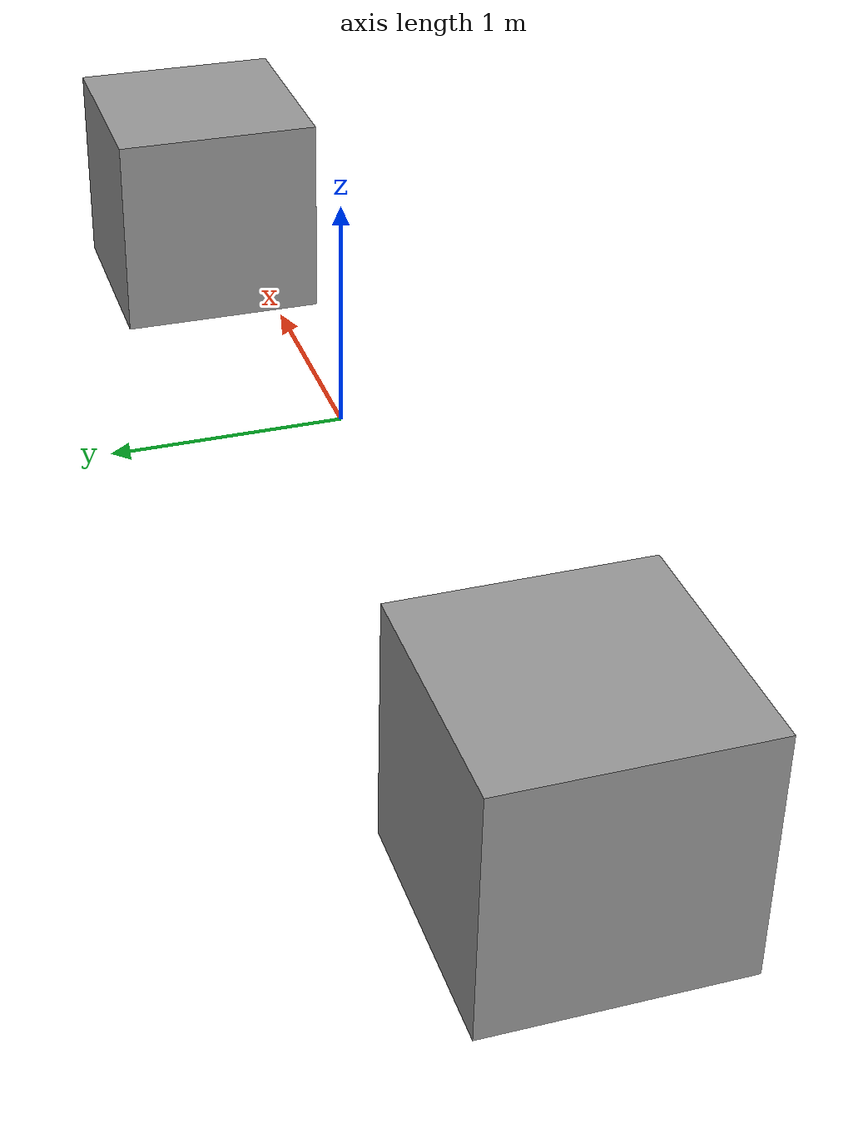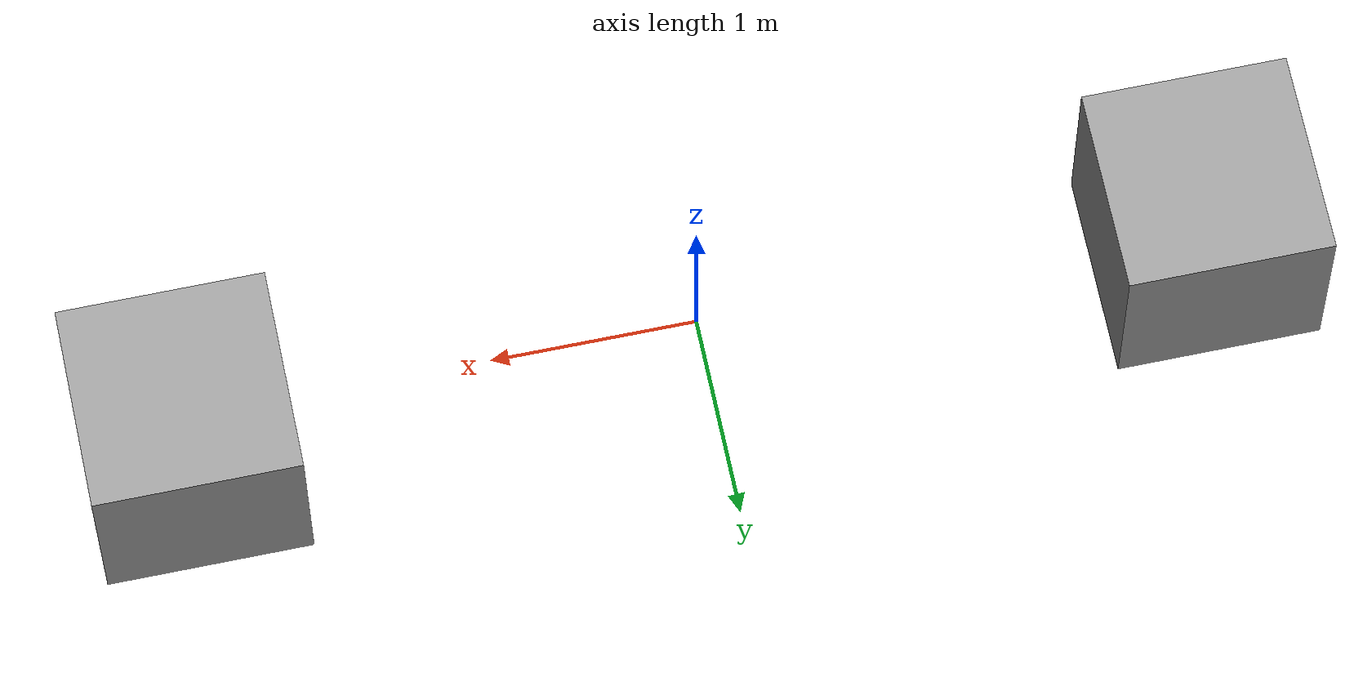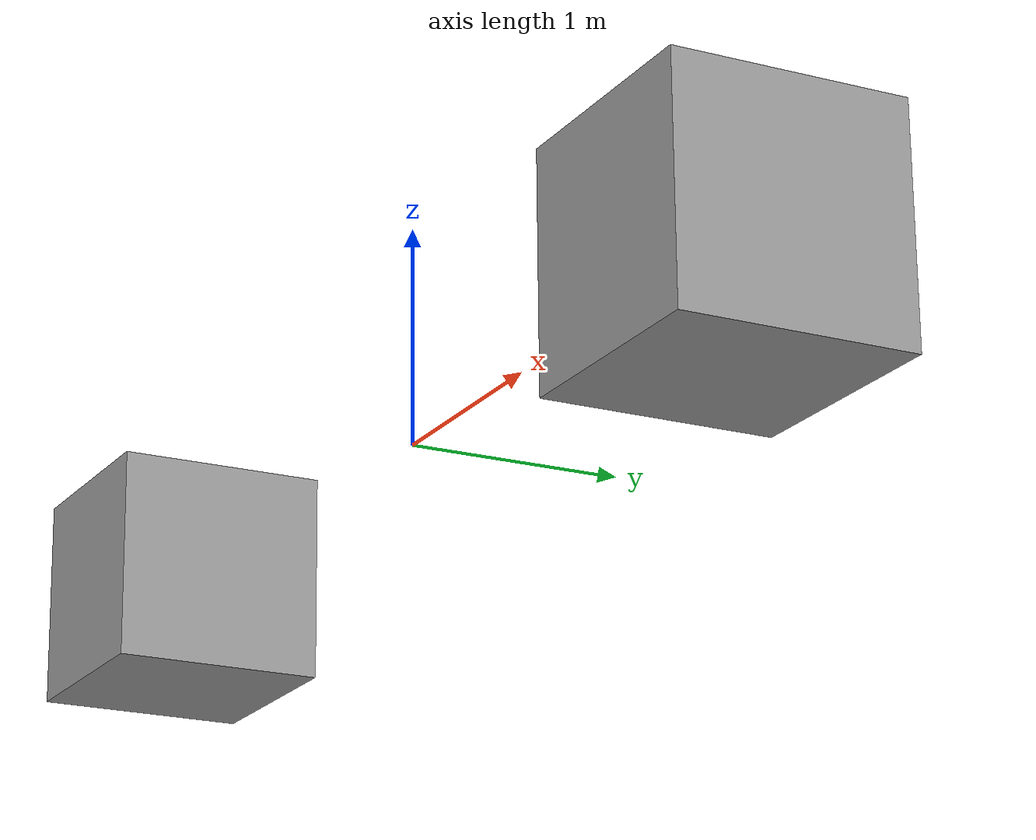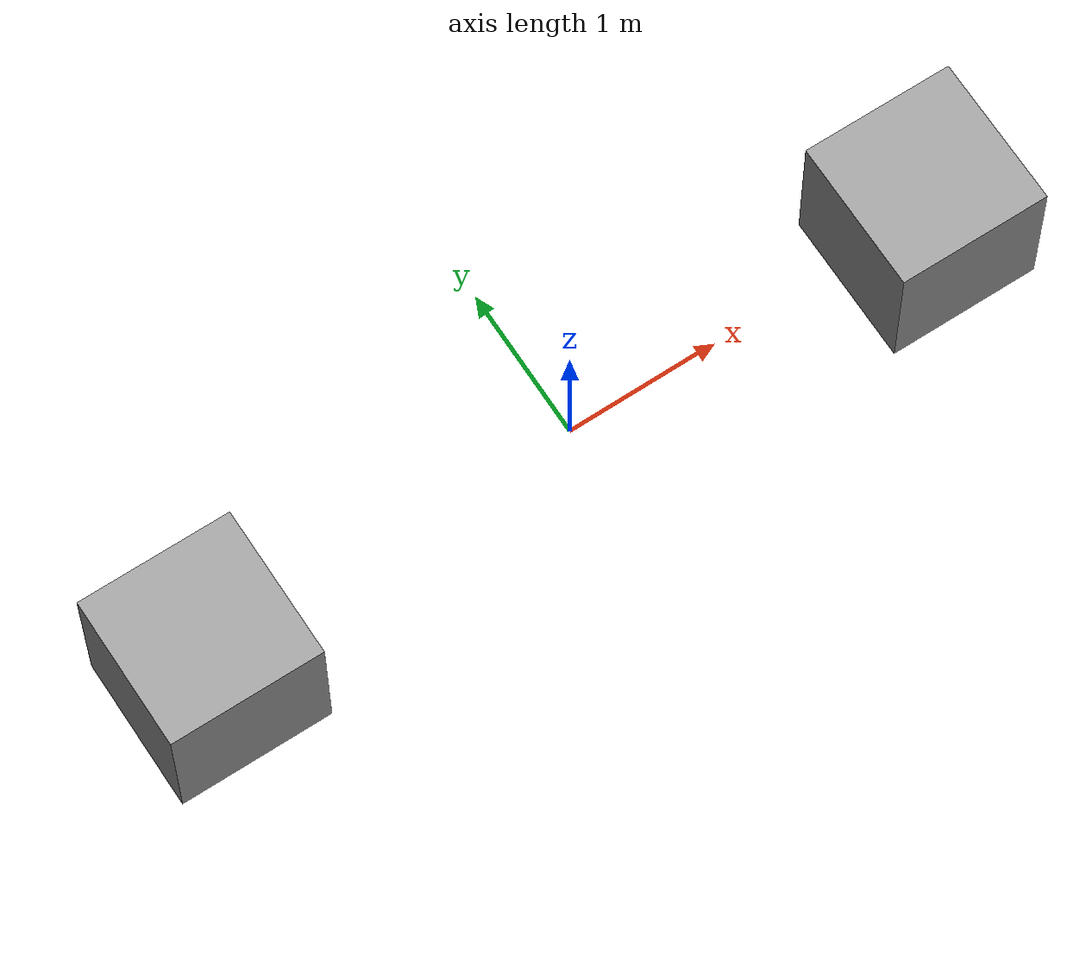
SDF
<?xml version='1.0'?>
<sdf version='1.6'>
  <model name='prismatic_joint_example'>
    <link name='link_12'>
      <inertial>
        <mass>1</mass>
        <inertia>
          <ixx>0.166667</ixx>
          <ixy>0</ixy>
          <ixz>0</ixz>
          <iyy>0.166667</iyy>
          <iyz>0</iyz>
          <izz>0.166667</izz>
        </inertia>
      </inertial>
      <pose frame=''>-2.48183 -0.048955 0 0 -0 0</pose>
      <visual name='visual'>
        <pose frame=''>0 0 0 0 -0 0</pose>
        <geometry>
          <box>
            <size>1 1 1</size>
          </box>
        </geometry>
        <material>
          <lighting>1</lighting>
          <script>
            <uri>file://media/materials/scripts/gazebo.material</uri>
            <name>Gazebo/Grey</name>
          </script>
          <shader type='pixel'/>
          <emissive>0 0 0 1</emissive>
        </material>
        <transparency>0</transparency>
        <cast_shadows>1</cast_shadows>
      </visual>
      <collision name='collision'>
        <laser_retro>0</laser_retro>
        <max_contacts>10</max_contacts>
        <pose frame=''>0 0 0 0 -0 0</pose>
        <geometry>
          <box>
            <size>1 1 1</size>
          </box>
        </geometry>
        <surface>
          <friction>
            <ode>
              <mu>1</mu>
              <mu2>1</mu2>
              <fdir1>0 0 0</fdir1>
              <slip1>0</slip1>
              <slip2>0</slip2>
            </ode>
            <torsional>
              <coefficient>1</coefficient>
              <patch_radius>0</patch_radius>
              <surface_radius>0</surface_radius>
              <use_patch_radius>1</use_patch_radius>
              <ode>
                <slip>0</slip>
              </ode>
            </torsional>
          </friction>
          <bounce>
            <restitution_coefficient>0</restitution_coefficient>
            <threshold>1e+06</threshold>
          </bounce>
          <contact>
            <collide_without_contact>0</collide_without_contact>
            <collide_without_contact_bitmask>1</collide_without_contact_bitmask>
            <collide_bitmask>1</collide_bitmask>
            <ode>
              <soft_cfm>0</soft_cfm>
              <soft_erp>0.2</soft_erp>
              <kp>1e+13</kp>
              <kd>1</kd>
              <max_vel>0.01</max_vel>
              <min_depth>0</min_depth>
            </ode>
            <bullet>
              <split_impulse>1</split_impulse>
              <split_impulse_penetration_threshold>-0.01</split_impulse_penetration_threshold>
              <soft_cfm>0</soft_cfm>
              <soft_erp>0.2</soft_erp>
              <kp>1e+13</kp>
              <kd>1</kd>
            </bullet>
          </contact>
        </surface>
      </collision>
    </link>
    <link name='link_13'>
      <inertial>
        <mass>1</mass>
        <inertia>
          <ixx>0.166667</ixx>
          <ixy>0</ixy>
          <ixz>0</ixz>
          <iyy>0.166667</iyy>
          <iyz>0</iyz>
          <izz>0.166667</izz>
        </inertia>
      </inertial>
      <pose frame=''>2.48182 0.048953 0 0 -0 0</pose>
      <visual name='visual'>
        <pose frame=''>0 0 0 0 -0 0</pose>
        <geometry>
          <box>
            <size>1 1 1</size>
          </box>
        </geometry>
        <material>
          <lighting>1</lighting>
          <script>
            <uri>file://media/materials/scripts/gazebo.material</uri>
            <name>Gazebo/Grey</name>
          </script>
          <shader type='pixel'/>
          <emissive>0 0 0 1</emissive>
        </material>
        <transparency>0</transparency>
        <cast_shadows>1</cast_shadows>
      </visual>
      <collision name='collision'>
        <laser_retro>0</laser_retro>
        <max_contacts>10</max_contacts>
        <pose frame=''>0 0 0 0 -0 0</pose>
        <geometry>
          <box>
            <size>1 1 1</size>
          </box>
        </geometry>
        <surface>
          <friction>
            <ode>
              <mu>1</mu>
              <mu2>1</mu2>
              <fdir1>0 0 0</fdir1>
              <slip1>0</slip1>
              <slip2>0</slip2>
            </ode>
            <torsional>
              <coefficient>1</coefficient>
              <patch_radius>0</patch_radius>
              <surface_radius>0</surface_radius>
              <use_patch_radius>1</use_patch_radius>
              <ode>
                <slip>0</slip>
              </ode>
            </torsional>
          </friction>
          <bounce>
            <restitution_coefficient>0</restitution_coefficient>
            <threshold>1e+06</threshold>
          </bounce>
          <contact>
            <collide_without_contact>0</collide_without_contact>
            <collide_without_contact_bitmask>1</collide_without_contact_bitmask>
            <collide_bitmask>1</collide_bitmask>
            <ode>
              <soft_cfm>0</soft_cfm>
              <soft_erp>0.2</soft_erp>
              <kp>1e+13</kp>
              <kd>1</kd>
              <max_vel>0.01</max_vel>
              <min_depth>0</min_depth>
            </ode>
            <bullet>
              <split_impulse>1</split_impulse>
              <split_impulse_penetration_threshold>-0.01</split_impulse_penetration_threshold>
              <soft_cfm>0</soft_cfm>
              <soft_erp>0.2</soft_erp>
              <kp>1e+13</kp>
              <kd>1</kd>
            </bullet>
          </contact>
        </surface>
      </collision>
    </link>
    <joint name='link_12_JOINT_7' type='prismatic'>
      <parent>link_12</parent>
      <child>link_13</child>
      <pose frame=''>-2 0 0 0 -0 0</pose>
      <axis>
        <xyz>1 0 0</xyz>
        <use_parent_model_frame>0</use_parent_model_frame>
        <limit>
          <lower>-2</lower>
          <upper>2</upper>
          <effort>-1</effort>
          <velocity>-1</velocity>
        </limit>
        <dynamics>
          <spring_reference>0</spring_reference>
          <spring_stiffness>0</spring_stiffness>
          <damping>0</damping>
          <friction>0</friction>
        </dynamics>
      </axis>
      <physics>
        <ode>
          <limit>
            <cfm>0</cfm>
            <erp>0.2</erp>
          </limit>
          <suspension>
            <cfm>0</cfm>
            <erp>0.2</erp>
          </suspension>
        </ode>
      </physics>
    </joint>
    <static>0</static>
    <allow_auto_disable>1</allow_auto_disable>
  </model>
</sdf>
